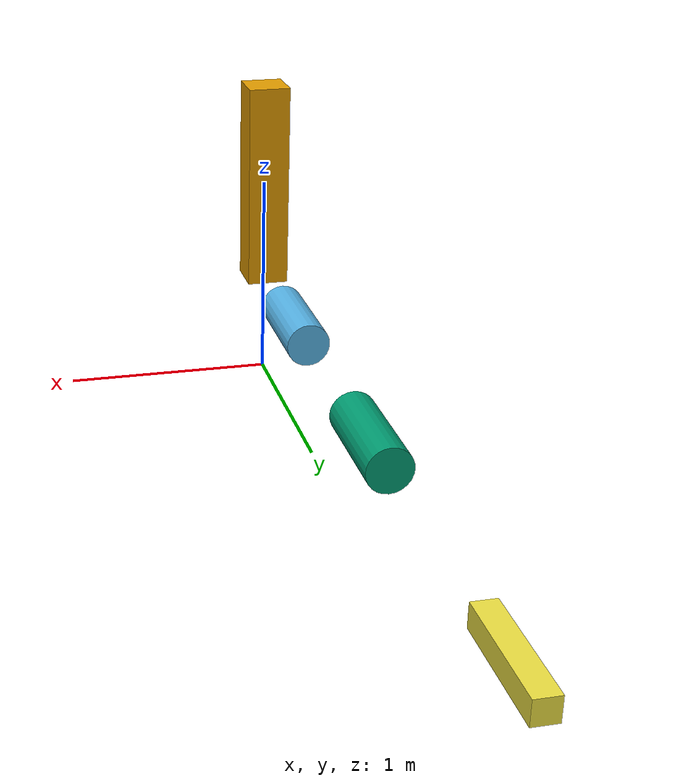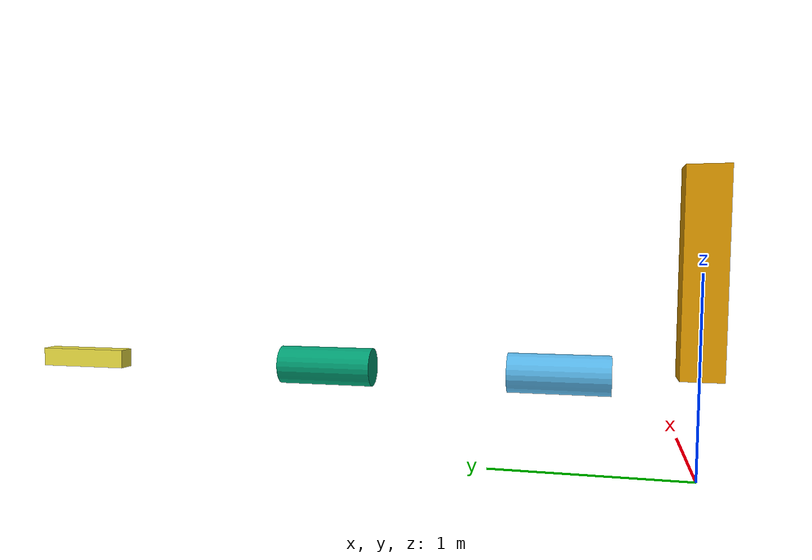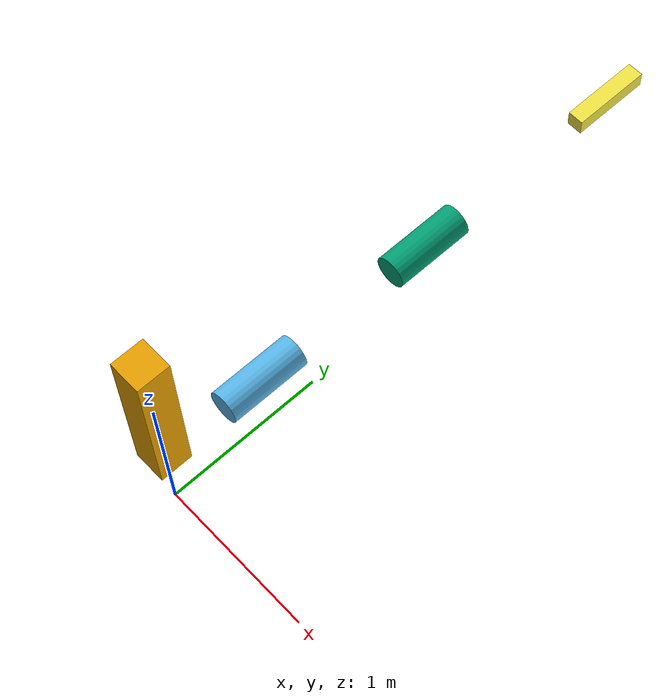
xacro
<?xml version="1.0"?>
<robot name="rocuto" xmlns:xacro="http://www.ros.org/wiki/xacro">

  <!-- Included URDF/XACRO Files-->

  <xacro:include filename="$(find rocuto_pkg)/urdf/macros.xacro" />
  <xacro:include filename="$(find rocuto_pkg)/urdf/materials.xacro" />
  <xacro:include filename="$(find rocuto_pkg)/urdf/gazebo_rocuto.urdf.gazebo" />

  <!-- constants -->
  <xacro:property name="M_PI" value="3.14159"/>

  <!-- frame properties -->
  <xacro:property name="frame_x_size" value="0.2" />
  <xacro:property name="frame_y_size" value="0.2" />
  <xacro:property name="frame_z_size" value="1" />

  <!-- link Properties -->
  <xacro:property name="link1_length" value="0.5" />
  <xacro:property name="link1_radius" value="0.1" />

  <!-- tool Properties -->
  <xacro:property name="tool_length" value="0.1" />
  <xacro:property name="tool_width" value="0.5" />
  <xacro:property name="tool_height" value="0.1" />

  <!-- frame origin -->
  <xacro:property name="frame_x_origin" value="0" />
  <xacro:property name="frame_y_origin" value="0" />
  <xacro:property name="frame_z_origin" value="0.5" />

  <!-- joint 1 origin -->
  <xacro:property name="joint1_x" value="${frame_x_origin}" />
  <xacro:property name="joint1_y" value="${frame_y_origin + 0.2}" />
  <xacro:property name="joint1_z" value="${frame_z_origin - 0.5}" />

  <!-- joint 2 origin -->
  <xacro:property name="joint2_x" value="${frame_x_origin}" />
  <xacro:property name="joint2_y" value="${frame_y_origin + 0.2 + 0.5}" />
  <xacro:property name="joint2_z" value="${frame_z_origin - 0.5}" />

  <!-- joint 3 origin -->
  <xacro:property name="joint3_x" value="${frame_x_origin}" />
  <xacro:property name="joint3_y" value="${frame_y_origin + 0.2 + 0.5 + 0.5}" />
  <xacro:property name="joint3_z" value="${frame_z_origin - 0.5}" />

<!-- ramme på robotplatform -->
  <xacro:link_box link_name="frame" length="${frame_x_size}" width="${frame_y_size}" height="${frame_z_size}" density="1" mesh_name="nofile">
    <!-- origin visual -->
    <origin xyz="${frame_x_origin} ${frame_y_origin} ${frame_z_origin}" rpy="0 0 0"/>
    <!-- origin collision -->
    <origin xyz="${frame_x_origin} ${frame_y_origin} ${frame_z_origin}" rpy="0 0 0"/>
    <!-- origin inertia -->
    <origin xyz="${frame_x_origin} ${frame_y_origin} ${frame_z_origin}" rpy="0 0 0"/>
  </xacro:link_box>

  <!-- leddet mellom ramme og link1 -->
  <joint name="frame_to_link1" type="revolute">
    <origin xyz="${joint1_x} ${joint1_y} ${joint1_z}" rpy="0 0 0"/>
    <parent link="frame"/>
    <child link="link1"/>
    <axis xyz="0 0 1" rpy="0 0 0"/>
    <limit effort="100" velocity="100" lower="-${pi/2}" upper="${pi/2}"/>
    <joint_properties damping="0.0" friction="0.0"/>
  </joint>

  <transmission name="link1_tran">
    <type>transmission_interface/SimpleTransmission</type>
    <joint name="frame_to_link1">
      <hardwareInterface>hardware_interface/PositionJointInterface</hardwareInterface>
    </joint>
    <actuator name="link1_motor">
      <hardwareInterface>hardware_interface/PositionJointInterface</hardwareInterface>
      <mechanicalReduction>1</mechanicalReduction>
    </actuator>
  </transmission>

<!-- link1 -->
  <xacro:link_cylinder link_name="link1" radius="${link1_radius}" length="${link1_length}" density="1" mesh_name="nofile">
    <!-- origin visual -->
    <origin xyz="${joint1_x} ${joint1_y + 0.25} ${joint1_z}" rpy="${M_PI/2} 0 0"/>
    <!-- origin collision -->
    <origin xyz="${joint1_x} ${joint1_y + 0.25} ${joint1_z}" rpy="${M_PI/2} 0 0"/>
    <!-- origin inertia -->
    <origin xyz="${joint1_x} ${joint1_y} ${joint1_z}" rpy="${M_PI/2} 0 0"/>
  </xacro:link_cylinder>

  <!-- leddet mellom link1 og link2 -->
  <joint name="link1_to_link2" type="revolute">
    <origin xyz="${joint2_x} ${joint2_y} ${joint2_z}" rpy="0 0 0"/>
    <parent link="link1"/>
    <child link="link2"/>
    <axis xyz="0 0 1" rpy="0 0 0"/>
    <limit effort="100" velocity="100" lower="-${pi/2}" upper="${pi/2}"/>
    <joint_properties damping="0.0" friction="0.0"/>
  </joint>

  <transmission name="link2_tran">
    <type>transmission_interface/SimpleTransmission</type>
    <joint name="link1_to_link2">
      <hardwareInterface>hardware_interface/PositionJointInterface</hardwareInterface>
    </joint>
    <actuator name="link2_motor">
      <hardwareInterface>hardware_interface/PositionJointInterface</hardwareInterface>
      <mechanicalReduction>1</mechanicalReduction>
    </actuator>
  </transmission>

<!-- link2 -->
  <xacro:link_cylinder link_name="link2" radius="${link1_radius}" length="${link1_length}" density="1" mesh_name="nofile">
    <origin xyz="${joint2_x} ${joint2_y + 0.25} ${joint2_z}" rpy="${M_PI/2} 0 0"/>
    <!-- origin collision -->
    <origin xyz="${joint2_x} ${joint2_y + 0.25} ${joint2_z}" rpy="${M_PI/2} 0 0"/>
    <!-- origin inertia -->
    <origin xyz="${joint2_x} ${joint2_y} ${joint2_z}" rpy="${M_PI/2} 0 0"/>
  </xacro:link_cylinder>

<!-- Dette er ikke et ledd bare kobling mellom link2 og tool -->
  <joint name="link2_to_tool" type="fixed">
    <origin xyz="${joint3_x} ${joint3_y} ${joint3_z}" rpy="0 0 0"/>
    <parent link="link2"/>
    <child link="tool"/>
  </joint>

<!-- tool -->
  <xacro:link_box link_name="tool" length="${tool_length}" width="${tool_width}" height="${tool_height}" density="1" mesh_name="nofile">
    <!-- origin visual -->
    <origin xyz="${joint3_x} ${joint3_y} ${joint3_z}" rpy="0 0 0"/>
    <!-- origin collision -->
    <origin xyz="${joint3_x} ${joint3_y} ${joint3_z}" rpy="0 0 0"/>
    <!-- origin inertia -->
    <origin xyz="${joint3_x} ${joint3_y} ${joint3_z}" rpy="0 0 0"/>
  </xacro:link_box>

<!-- Fixed joint to make frame static in world -->
<link name="world" />

 <joint name="world_joint" type="fixed">
    <parent link="world" />
    <child link = "frame" />
    <origin xyz="0.0 0.0 0.5" rpy="0.0 0.0 0.0" />
 </joint>

</robot>

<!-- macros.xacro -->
<!--
	definitions of some macros for easier description of the robot
-->

<robot xmlns:xacro="http://www.ros.org/wiki/xacro">

  <xacro:macro name="link_box" params="link_name length width height density:=1 mesh_name:='nofile' *origin_vis *origin_col *origin_inertial">
    <xacro:property name="mass" value="${length*height*width*density}" />
    <link name="${link_name}">
      <visual>
        <xacro:insert_block name="origin_vis" />
        <geometry>
          <xacro:if value="${mesh_name == 'nofile'}">
            <box size="${length} ${width} ${height}"/>
          </xacro:if>
          <xacro:unless value="${mesh_name == 'nofile'}">
            <mesh filename="${mesh_name}" />
          </xacro:unless>
        </geometry>
      </visual>
      <collision>
        <xacro:insert_block name="origin_col" />
        <geometry>
          <box size="${length} ${width} ${height}"/>
        </geometry>
      </collision>
      <inertial>
        <xacro:insert_block name="origin_inertial" />
        <mass value="${mass}"/>
        <inertia
          ixx="${mass*(pow(height,2) + pow(width,2))/12}" ixy="0.0" ixz="0.0"
          iyy="${mass*(pow(length,2) + pow(height,2))/12}" iyz="0.0"
          izz="${mass*(pow(length,2) + pow(width,2))/12}"/>
      </inertial>
    </link>

    <gazebo reference="${link_name}_box">
      <mu1 value="1.0"/>
      <mu2 value="1.0"/>
      <kp  value="10000000.0" />

      <kd>100.0</kd>
      <minDepth>0.001</minDepth>
      <maxVel>1.0</maxVel>

      <material>gazebo/red</material>
    </gazebo>

  </xacro:macro>

  <xacro:macro name="link_cylinder" params="link_name radius length density:=1 mesh_name:='nofile' *origin_vis *origin_col *origin_inertial">
    <xacro:property name="mass" value="${pi*length*pow(radius,2)*density}" />
    <link name="${link_name}">
      <visual>
        <xacro:insert_block name="origin_vis" />
        <geometry>
          <xacro:if value="${mesh_name == 'nofile'}">
            <cylinder length="${length}" radius="${radius}"/>
          </xacro:if>
          <xacro:unless value="${mesh_name == 'nofile'}">
            <mesh filename="${mesh_name}" />
          </xacro:unless>
        </geometry>
      </visual>
      <collision>
        <xacro:insert_block name="origin_col" />
        <geometry>
          <cylinder length="${length}" radius="${radius}"/>
        </geometry>
      </collision>
      <inertial>
        <xacro:insert_block name="origin_inertial" />
        <mass value="${mass}"/>
        <inertia
          ixx="${mass*(3*pow(radius,2)+pow(length,2))/12}" ixy="0.0" ixz="0.0"
          iyy="${mass*(3*pow(radius,2)+pow(length,2))/12}" iyz="0.0"
          izz="${mass*pow(radius,2)/2}"/>
      </inertial>
    </link>

    <gazebo reference="${link_name}_cylinder">
      <mu1 value="1.0"/>
      <mu2 value="1.0"/>
      <kp  value="10000000.0" />

      <kd>100.0</kd>
      <minDepth>0.001</minDepth>
      <maxVel>1.0</maxVel>

      <material>Gazebo/blue</material>
    </gazebo>

  </xacro:macro>

</robot>

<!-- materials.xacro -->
<robot>

  <material name="black">
    <color rgba="${0.0} ${0.0} ${0.0} ${1.0}"/>
  </material>

  <material name="blue">
    <color rgba="${0.0} ${0.0} ${0.8} ${1.0}"/>
  </material>

  <material name="green">
    <color rgba="${0.0} ${0.8} ${0.0} ${1.0}"/>
  </material>

  <material name="grey">
    <color rgba="${0.2} ${0.2} ${0.2} ${1.0}"/>
  </material>

  <material name="orange">
    <color rgba="${255/255} ${108/255} ${10/255} ${1.0}"/>
  </material>

  <material name="brown">
    <color rgba="${222/255} ${207/255} ${195/255} ${1.0}"/>
  </material>

  <material name="red">
    <color rgba="${0.8} ${0.0} ${0.0} ${1.0}"/>
  </material>

  <material name="white">
    <color rgba="${1.0} ${1.0} ${1.0} ${1.0}"/>
  </material>

</robot>
